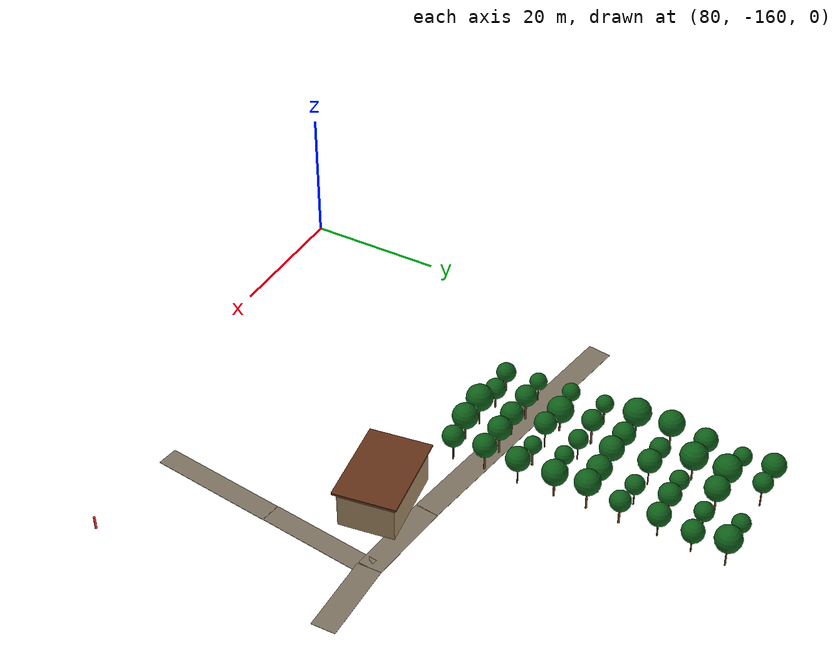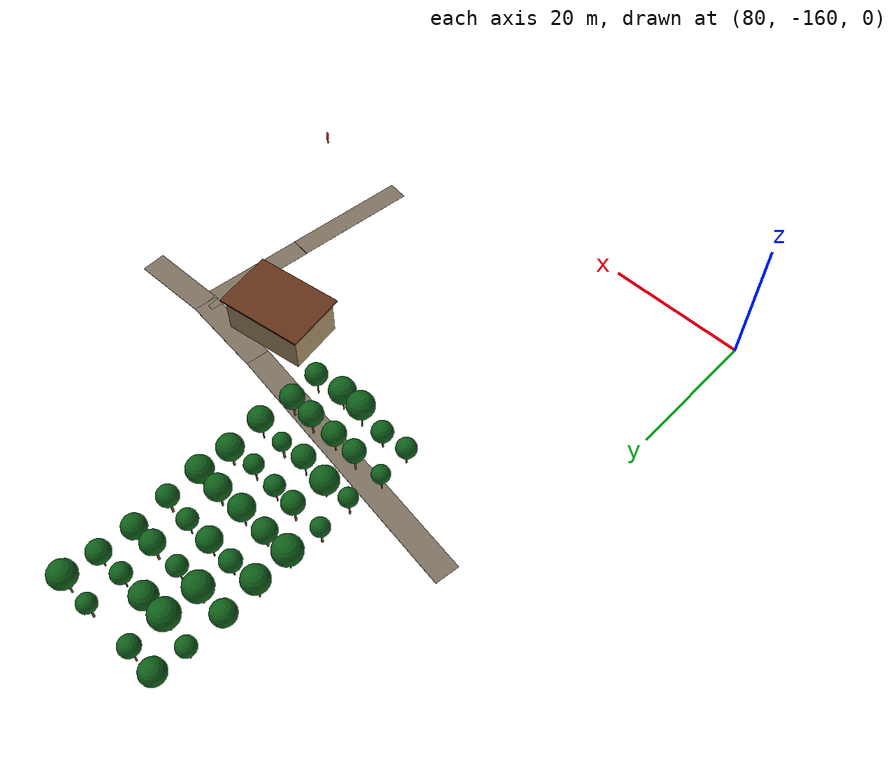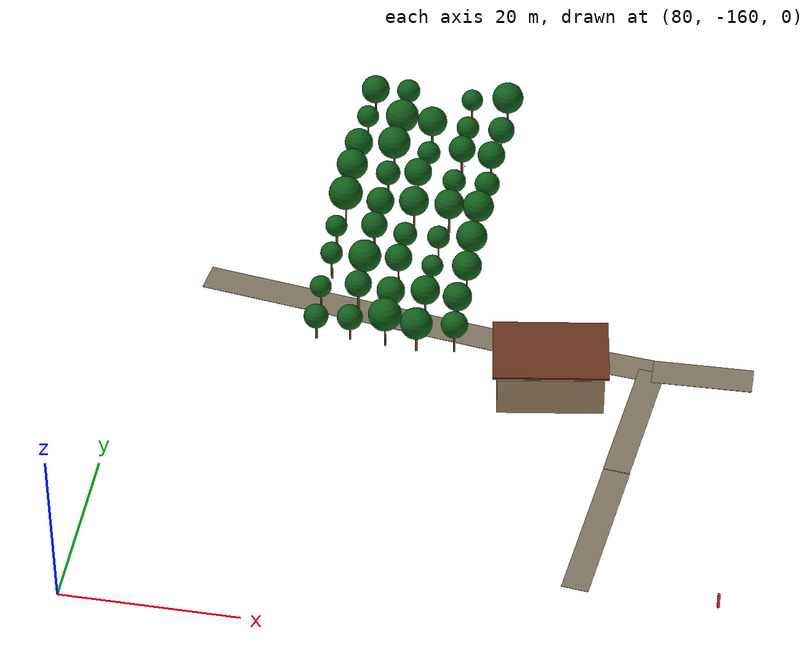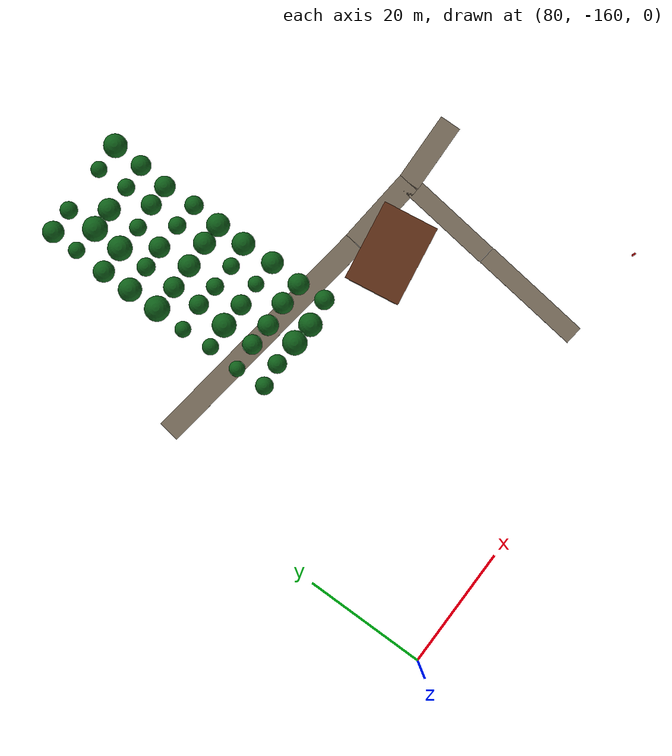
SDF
<sdf version="1.9">
 <world name="cheongsong_orchard">
  <model name="road_6">
   <static>true</static>
   <pose>105.9 -111.3 0.02 0 0 -0.1419</pose>
   <link name="link">
    <collision name="collision">
     <geometry><box><size>40.9 3.5 0.04</size></box></geometry>
     <surface><friction><ode><mu>0.9</mu><mu2>0.9</mu2></ode></friction></surface>
    </collision>
    <visual name="visual">
     <geometry><box><size>40.9 3.5 0.04</size></box></geometry>
     <material><ambient>0.4 0.35 0.28 1</ambient><diffuse>0.5 0.45 0.38 1</diffuse></material>
    </visual>
   </link>
  </model>
  <model name="road_7">
   <static>true</static>
   <pose>132.4 -114.8 0.02 0 0 -0.1008</pose>
   <link name="link">
    <collision name="collision">
     <geometry><box><size>12.5 3.5 0.04</size></box></geometry>
     <surface><friction><ode><mu>0.9</mu><mu2>0.9</mu2></ode></friction></surface>
    </collision>
    <visual name="visual">
     <geometry><box><size>12.5 3.5 0.04</size></box></geometry>
     <material><ambient>0.4 0.35 0.28 1</ambient><diffuse>0.5 0.45 0.38 1</diffuse></material>
    </visual>
   </link>
  </model>
  <model name="road_8">
   <static>true</static>
   <pose>144.3 -115.3 0.02 0 0 0.0247</pose>
   <link name="link">
    <collision name="collision">
     <geometry><box><size>11.4 3.5 0.04</size></box></geometry>
     <surface><friction><ode><mu>0.9</mu><mu2>0.9</mu2></ode></friction></surface>
    </collision>
    <visual name="visual">
     <geometry><box><size>11.4 3.5 0.04</size></box></geometry>
     <material><ambient>0.4 0.35 0.28 1</ambient><diffuse>0.5 0.45 0.38 1</diffuse></material>
    </visual>
   </link>
  </model>
  <model name="road_26">
   <static>true</static>
   <pose>135.6 -140.9 0.02 0 0 1.4537</pose>
   <link name="link">
    <collision name="collision">
     <geometry><box><size>18.3 3.0 0.04</size></box></geometry>
     <surface><friction><ode><mu>0.9</mu><mu2>0.9</mu2></ode></friction></surface>
    </collision>
    <visual name="visual">
     <geometry><box><size>18.3 3.0 0.04</size></box></geometry>
     <material><ambient>0.4 0.35 0.28 1</ambient><diffuse>0.5 0.45 0.38 1</diffuse></material>
    </visual>
   </link>
  </model>
  <model name="road_27">
   <static>true</static>
   <pose>137.6 -123.6 0.02 0 0 1.4529</pose>
   <link name="link">
    <collision name="collision">
     <geometry><box><size>16.4 3.0 0.04</size></box></geometry>
     <surface><friction><ode><mu>0.9</mu><mu2>0.9</mu2></ode></friction></surface>
    </collision>
    <visual name="visual">
     <geometry><box><size>16.4 3.0 0.04</size></box></geometry>
     <material><ambient>0.4 0.35 0.28 1</ambient><diffuse>0.5 0.45 0.38 1</diffuse></material>
    </visual>
   </link>
  </model>
  <model name="apple_tree_51">
   <static>true</static>
   <pose>100.02 -116.29 0 0 0 0</pose>
   <link name="link">
    <collision name="trunk_col">
     <pose>0 0 0.99 0 0 0</pose>
     <geometry><cylinder><radius>0.141</radius><length>1.98</length></cylinder></geometry>
    </collision>
    <visual name="trunk_vis">
     <pose>0 0 0.99 0 0 0</pose>
     <geometry><cylinder><radius>0.141</radius><length>1.98</length></cylinder></geometry>
     <material><ambient>0.35 0.22 0.08 1</ambient><diffuse>0.45 0.30 0.12 1</diffuse></material>
    </visual>
    <collision name="canopy_col">
     <pose>0 0 3.39 0 0 0</pose>
     <geometry><sphere><radius>1.41</radius></sphere></geometry>
    </collision>
    <visual name="canopy_vis">
     <pose>0 0 3.39 0 0 0</pose>
     <geometry><sphere><radius>1.41</radius></sphere></geometry>
     <material><ambient>0.04 0.28 0.06 1</ambient><diffuse>0.06 0.38 0.10 1</diffuse></material>
    </visual>
   </link>
  </model>
  <model name="apple_tree_52">
   <static>true</static>
   <pose>103.86 -115.90 0 0 0 0</pose>
   <link name="link">
    <collision name="trunk_col">
     <pose>0 0 0.99 0 0 0</pose>
     <geometry><cylinder><radius>0.122</radius><length>1.99</length></cylinder></geometry>
    </collision>
    <visual name="trunk_vis">
     <pose>0 0 0.99 0 0 0</pose>
     <geometry><cylinder><radius>0.122</radius><length>1.99</length></cylinder></geometry>
     <material><ambient>0.35 0.22 0.08 1</ambient><diffuse>0.45 0.30 0.12 1</diffuse></material>
    </visual>
    <collision name="canopy_col">
     <pose>0 0 3.46 0 0 0</pose>
     <geometry><sphere><radius>1.48</radius></sphere></geometry>
    </collision>
    <visual name="canopy_vis">
     <pose>0 0 3.46 0 0 0</pose>
     <geometry><sphere><radius>1.48</radius></sphere></geometry>
     <material><ambient>0.04 0.28 0.06 1</ambient><diffuse>0.06 0.38 0.10 1</diffuse></material>
    </visual>
   </link>
  </model>
  <model name="apple_tree_53">
   <static>true</static>
   <pose>107.98 -116.23 0 0 0 0</pose>
   <link name="link">
    <collision name="trunk_col">
     <pose>0 0 1.45 0 0 0</pose>
     <geometry><cylinder><radius>0.088</radius><length>2.91</length></cylinder></geometry>
    </collision>
    <visual name="trunk_vis">
     <pose>0 0 1.45 0 0 0</pose>
     <geometry><cylinder><radius>0.088</radius><length>2.91</length></cylinder></geometry>
     <material><ambient>0.35 0.22 0.08 1</ambient><diffuse>0.45 0.30 0.12 1</diffuse></material>
    </visual>
    <collision name="canopy_col">
     <pose>0 0 4.83 0 0 0</pose>
     <geometry><sphere><radius>1.92</radius></sphere></geometry>
    </collision>
    <visual name="canopy_vis">
     <pose>0 0 4.83 0 0 0</pose>
     <geometry><sphere><radius>1.92</radius></sphere></geometry>
     <material><ambient>0.04 0.28 0.06 1</ambient><diffuse>0.06 0.38 0.10 1</diffuse></material>
    </visual>
   </link>
  </model>
  <model name="apple_tree_54">
   <static>true</static>
   <pose>111.62 -116.46 0 0 0 0</pose>
   <link name="link">
    <collision name="trunk_col">
     <pose>0 0 1.19 0 0 0</pose>
     <geometry><cylinder><radius>0.116</radius><length>2.38</length></cylinder></geometry>
    </collision>
    <visual name="trunk_vis">
     <pose>0 0 1.19 0 0 0</pose>
     <geometry><cylinder><radius>0.116</radius><length>2.38</length></cylinder></geometry>
     <material><ambient>0.35 0.22 0.08 1</ambient><diffuse>0.45 0.30 0.12 1</diffuse></material>
    </visual>
    <collision name="canopy_col">
     <pose>0 0 4.22 0 0 0</pose>
     <geometry><sphere><radius>1.85</radius></sphere></geometry>
    </collision>
    <visual name="canopy_vis">
     <pose>0 0 4.22 0 0 0</pose>
     <geometry><sphere><radius>1.85</radius></sphere></geometry>
     <material><ambient>0.04 0.28 0.06 1</ambient><diffuse>0.06 0.38 0.10 1</diffuse></material>
    </visual>
   </link>
  </model>
  <model name="apple_tree_55">
   <static>true</static>
   <pose>115.92 -115.93 0 0 0 0</pose>
   <link name="link">
    <collision name="trunk_col">
     <pose>0 0 1.33 0 0 0</pose>
     <geometry><cylinder><radius>0.094</radius><length>2.67</length></cylinder></geometry>
    </collision>
    <visual name="trunk_vis">
     <pose>0 0 1.33 0 0 0</pose>
     <geometry><cylinder><radius>0.094</radius><length>2.67</length></cylinder></geometry>
     <material><ambient>0.35 0.22 0.08 1</ambient><diffuse>0.45 0.30 0.12 1</diffuse></material>
    </visual>
    <collision name="canopy_col">
     <pose>0 0 4.21 0 0 0</pose>
     <geometry><sphere><radius>1.55</radius></sphere></geometry>
    </collision>
    <visual name="canopy_vis">
     <pose>0 0 4.21 0 0 0</pose>
     <geometry><sphere><radius>1.55</radius></sphere></geometry>
     <material><ambient>0.04 0.28 0.06 1</ambient><diffuse>0.06 0.38 0.10 1</diffuse></material>
    </visual>
   </link>
  </model>
  <model name="apple_tree_105">
   <static>true</static>
   <pose>99.65 -111.40 0 0 0 0</pose>
   <link name="link">
    <collision name="trunk_col">
     <pose>0 0 1.10 0 0 0</pose>
     <geometry><cylinder><radius>0.090</radius><length>2.21</length></cylinder></geometry>
    </collision>
    <visual name="trunk_vis">
     <pose>0 0 1.10 0 0 0</pose>
     <geometry><cylinder><radius>0.090</radius><length>2.21</length></cylinder></geometry>
     <material><ambient>0.35 0.22 0.08 1</ambient><diffuse>0.45 0.30 0.12 1</diffuse></material>
    </visual>
    <collision name="canopy_col">
     <pose>0 0 3.46 0 0 0</pose>
     <geometry><sphere><radius>1.25</radius></sphere></geometry>
    </collision>
    <visual name="canopy_vis">
     <pose>0 0 3.46 0 0 0</pose>
     <geometry><sphere><radius>1.25</radius></sphere></geometry>
     <material><ambient>0.04 0.28 0.06 1</ambient><diffuse>0.06 0.38 0.10 1</diffuse></material>
    </visual>
   </link>
  </model>
  <model name="apple_tree_106">
   <static>true</static>
   <pose>103.99 -111.13 0 0 0 0</pose>
   <link name="link">
    <collision name="trunk_col">
     <pose>0 0 1.38 0 0 0</pose>
     <geometry><cylinder><radius>0.144</radius><length>2.75</length></cylinder></geometry>
    </collision>
    <visual name="trunk_vis">
     <pose>0 0 1.38 0 0 0</pose>
     <geometry><cylinder><radius>0.144</radius><length>2.75</length></cylinder></geometry>
     <material><ambient>0.35 0.22 0.08 1</ambient><diffuse>0.45 0.30 0.12 1</diffuse></material>
    </visual>
    <collision name="canopy_col">
     <pose>0 0 4.30 0 0 0</pose>
     <geometry><sphere><radius>1.55</radius></sphere></geometry>
    </collision>
    <visual name="canopy_vis">
     <pose>0 0 4.30 0 0 0</pose>
     <geometry><sphere><radius>1.55</radius></sphere></geometry>
     <material><ambient>0.04 0.28 0.06 1</ambient><diffuse>0.06 0.38 0.10 1</diffuse></material>
    </visual>
   </link>
  </model>
  <model name="apple_tree_107">
   <static>true</static>
   <pose>107.79 -111.31 0 0 0 0</pose>
   <link name="link">
    <collision name="trunk_col">
     <pose>0 0 1.17 0 0 0</pose>
     <geometry><cylinder><radius>0.099</radius><length>2.34</length></cylinder></geometry>
    </collision>
    <visual name="trunk_vis">
     <pose>0 0 1.17 0 0 0</pose>
     <geometry><cylinder><radius>0.099</radius><length>2.34</length></cylinder></geometry>
     <material><ambient>0.35 0.22 0.08 1</ambient><diffuse>0.45 0.30 0.12 1</diffuse></material>
    </visual>
    <collision name="canopy_col">
     <pose>0 0 3.97 0 0 0</pose>
     <geometry><sphere><radius>1.63</radius></sphere></geometry>
    </collision>
    <visual name="canopy_vis">
     <pose>0 0 3.97 0 0 0</pose>
     <geometry><sphere><radius>1.63</radius></sphere></geometry>
     <material><ambient>0.04 0.28 0.06 1</ambient><diffuse>0.06 0.38 0.10 1</diffuse></material>
    </visual>
   </link>
  </model>
  <model name="apple_tree_108">
   <static>true</static>
   <pose>111.77 -111.13 0 0 0 0</pose>
   <link name="link">
    <collision name="trunk_col">
     <pose>0 0 1.41 0 0 0</pose>
     <geometry><cylinder><radius>0.131</radius><length>2.82</length></cylinder></geometry>
    </collision>
    <visual name="trunk_vis">
     <pose>0 0 1.41 0 0 0</pose>
     <geometry><cylinder><radius>0.131</radius><length>2.82</length></cylinder></geometry>
     <material><ambient>0.35 0.22 0.08 1</ambient><diffuse>0.45 0.30 0.12 1</diffuse></material>
    </visual>
    <collision name="canopy_col">
     <pose>0 0 4.50 0 0 0</pose>
     <geometry><sphere><radius>1.68</radius></sphere></geometry>
    </collision>
    <visual name="canopy_vis">
     <pose>0 0 4.50 0 0 0</pose>
     <geometry><sphere><radius>1.68</radius></sphere></geometry>
     <material><ambient>0.04 0.28 0.06 1</ambient><diffuse>0.06 0.38 0.10 1</diffuse></material>
    </visual>
   </link>
  </model>
  <model name="apple_tree_109">
   <static>true</static>
   <pose>115.53 -111.35 0 0 0 0</pose>
   <link name="link">
    <collision name="trunk_col">
     <pose>0 0 1.30 0 0 0</pose>
     <geometry><cylinder><radius>0.140</radius><length>2.61</length></cylinder></geometry>
    </collision>
    <visual name="trunk_vis">
     <pose>0 0 1.30 0 0 0</pose>
     <geometry><cylinder><radius>0.140</radius><length>2.61</length></cylinder></geometry>
     <material><ambient>0.35 0.22 0.08 1</ambient><diffuse>0.45 0.30 0.12 1</diffuse></material>
    </visual>
    <collision name="canopy_col">
     <pose>0 0 4.28 0 0 0</pose>
     <geometry><sphere><radius>1.67</radius></sphere></geometry>
    </collision>
    <visual name="canopy_vis">
     <pose>0 0 4.28 0 0 0</pose>
     <geometry><sphere><radius>1.67</radius></sphere></geometry>
     <material><ambient>0.04 0.28 0.06 1</ambient><diffuse>0.06 0.38 0.10 1</diffuse></material>
    </visual>
   </link>
  </model>
  <model name="apple_tree_157">
   <static>true</static>
   <pose>99.96 -106.20 0 0 0 0</pose>
   <link name="link">
    <collision name="trunk_col">
     <pose>0 0 1.35 0 0 0</pose>
     <geometry><cylinder><radius>0.116</radius><length>2.71</length></cylinder></geometry>
    </collision>
    <visual name="trunk_vis">
     <pose>0 0 1.35 0 0 0</pose>
     <geometry><cylinder><radius>0.116</radius><length>2.71</length></cylinder></geometry>
     <material><ambient>0.35 0.22 0.08 1</ambient><diffuse>0.45 0.30 0.12 1</diffuse></material>
    </visual>
    <collision name="canopy_col">
     <pose>0 0 4.00 0 0 0</pose>
     <geometry><sphere><radius>1.29</radius></sphere></geometry>
    </collision>
    <visual name="canopy_vis">
     <pose>0 0 4.00 0 0 0</pose>
     <geometry><sphere><radius>1.29</radius></sphere></geometry>
     <material><ambient>0.04 0.28 0.06 1</ambient><diffuse>0.06 0.38 0.10 1</diffuse></material>
    </visual>
   </link>
  </model>
  <model name="apple_tree_158">
   <static>true</static>
   <pose>103.81 -105.92 0 0 0 0</pose>
   <link name="link">
    <collision name="trunk_col">
     <pose>0 0 1.00 0 0 0</pose>
     <geometry><cylinder><radius>0.135</radius><length>1.99</length></cylinder></geometry>
    </collision>
    <visual name="trunk_vis">
     <pose>0 0 1.00 0 0 0</pose>
     <geometry><cylinder><radius>0.135</radius><length>1.99</length></cylinder></geometry>
     <material><ambient>0.35 0.22 0.08 1</ambient><diffuse>0.45 0.30 0.12 1</diffuse></material>
    </visual>
    <collision name="canopy_col">
     <pose>0 0 3.89 0 0 0</pose>
     <geometry><sphere><radius>1.89</radius></sphere></geometry>
    </collision>
    <visual name="canopy_vis">
     <pose>0 0 3.89 0 0 0</pose>
     <geometry><sphere><radius>1.89</radius></sphere></geometry>
     <material><ambient>0.04 0.28 0.06 1</ambient><diffuse>0.06 0.38 0.10 1</diffuse></material>
    </visual>
   </link>
  </model>
  <model name="apple_tree_159">
   <static>true</static>
   <pose>107.82 -106.21 0 0 0 0</pose>
   <link name="link">
    <collision name="trunk_col">
     <pose>0 0 1.44 0 0 0</pose>
     <geometry><cylinder><radius>0.084</radius><length>2.89</length></cylinder></geometry>
    </collision>
    <visual name="trunk_vis">
     <pose>0 0 1.44 0 0 0</pose>
     <geometry><cylinder><radius>0.084</radius><length>2.89</length></cylinder></geometry>
     <material><ambient>0.35 0.22 0.08 1</ambient><diffuse>0.45 0.30 0.12 1</diffuse></material>
    </visual>
    <collision name="canopy_col">
     <pose>0 0 4.47 0 0 0</pose>
     <geometry><sphere><radius>1.58</radius></sphere></geometry>
    </collision>
    <visual name="canopy_vis">
     <pose>0 0 4.47 0 0 0</pose>
     <geometry><sphere><radius>1.58</radius></sphere></geometry>
     <material><ambient>0.04 0.28 0.06 1</ambient><diffuse>0.06 0.38 0.10 1</diffuse></material>
    </visual>
   </link>
  </model>
  <model name="apple_tree_160">
   <static>true</static>
   <pose>111.75 -106.08 0 0 0 0</pose>
   <link name="link">
    <collision name="trunk_col">
     <pose>0 0 1.21 0 0 0</pose>
     <geometry><cylinder><radius>0.144</radius><length>2.43</length></cylinder></geometry>
    </collision>
    <visual name="trunk_vis">
     <pose>0 0 1.21 0 0 0</pose>
     <geometry><cylinder><radius>0.144</radius><length>2.43</length></cylinder></geometry>
     <material><ambient>0.35 0.22 0.08 1</ambient><diffuse>0.45 0.30 0.12 1</diffuse></material>
    </visual>
    <collision name="canopy_col">
     <pose>0 0 3.69 0 0 0</pose>
     <geometry><sphere><radius>1.26</radius></sphere></geometry>
    </collision>
    <visual name="canopy_vis">
     <pose>0 0 3.69 0 0 0</pose>
     <geometry><sphere><radius>1.26</radius></sphere></geometry>
     <material><ambient>0.04 0.28 0.06 1</ambient><diffuse>0.06 0.38 0.10 1</diffuse></material>
    </visual>
   </link>
  </model>
  <model name="apple_tree_161">
   <static>true</static>
   <pose>115.81 -106.23 0 0 0 0</pose>
   <link name="link">
    <collision name="trunk_col">
     <pose>0 0 1.36 0 0 0</pose>
     <geometry><cylinder><radius>0.088</radius><length>2.72</length></cylinder></geometry>
    </collision>
    <visual name="trunk_vis">
     <pose>0 0 1.36 0 0 0</pose>
     <geometry><cylinder><radius>0.088</radius><length>2.72</length></cylinder></geometry>
     <material><ambient>0.35 0.22 0.08 1</ambient><diffuse>0.45 0.30 0.12 1</diffuse></material>
    </visual>
    <collision name="canopy_col">
     <pose>0 0 4.45 0 0 0</pose>
     <geometry><sphere><radius>1.72</radius></sphere></geometry>
    </collision>
    <visual name="canopy_vis">
     <pose>0 0 4.45 0 0 0</pose>
     <geometry><sphere><radius>1.72</radius></sphere></geometry>
     <material><ambient>0.04 0.28 0.06 1</ambient><diffuse>0.06 0.38 0.10 1</diffuse></material>
    </visual>
   </link>
  </model>
  <model name="apple_tree_205">
   <static>true</static>
   <pose>99.61 -101.22 0 0 0 0</pose>
   <link name="link">
    <collision name="trunk_col">
     <pose>0 0 1.23 0 0 0</pose>
     <geometry><cylinder><radius>0.138</radius><length>2.45</length></cylinder></geometry>
    </collision>
    <visual name="trunk_vis">
     <pose>0 0 1.23 0 0 0</pose>
     <geometry><cylinder><radius>0.138</radius><length>2.45</length></cylinder></geometry>
     <material><ambient>0.35 0.22 0.08 1</ambient><diffuse>0.45 0.30 0.12 1</diffuse></material>
    </visual>
    <collision name="canopy_col">
     <pose>0 0 3.72 0 0 0</pose>
     <geometry><sphere><radius>1.27</radius></sphere></geometry>
    </collision>
    <visual name="canopy_vis">
     <pose>0 0 3.72 0 0 0</pose>
     <geometry><sphere><radius>1.27</radius></sphere></geometry>
     <material><ambient>0.04 0.28 0.06 1</ambient><diffuse>0.06 0.38 0.10 1</diffuse></material>
    </visual>
   </link>
  </model>
  <model name="apple_tree_206">
   <static>true</static>
   <pose>104.06 -101.00 0 0 0 0</pose>
   <link name="link">
    <collision name="trunk_col">
     <pose>0 0 1.41 0 0 0</pose>
     <geometry><cylinder><radius>0.145</radius><length>2.81</length></cylinder></geometry>
    </collision>
    <visual name="trunk_vis">
     <pose>0 0 1.41 0 0 0</pose>
     <geometry><cylinder><radius>0.145</radius><length>2.81</length></cylinder></geometry>
     <material><ambient>0.35 0.22 0.08 1</ambient><diffuse>0.45 0.30 0.12 1</diffuse></material>
    </visual>
    <collision name="canopy_col">
     <pose>0 0 4.34 0 0 0</pose>
     <geometry><sphere><radius>1.53</radius></sphere></geometry>
    </collision>
    <visual name="canopy_vis">
     <pose>0 0 4.34 0 0 0</pose>
     <geometry><sphere><radius>1.53</radius></sphere></geometry>
     <material><ambient>0.04 0.28 0.06 1</ambient><diffuse>0.06 0.38 0.10 1</diffuse></material>
    </visual>
   </link>
  </model>
  <model name="apple_tree_207">
   <static>true</static>
   <pose>107.75 -101.27 0 0 0 0</pose>
   <link name="link">
    <collision name="trunk_col">
     <pose>0 0 1.16 0 0 0</pose>
     <geometry><cylinder><radius>0.086</radius><length>2.33</length></cylinder></geometry>
    </collision>
    <visual name="trunk_vis">
     <pose>0 0 1.16 0 0 0</pose>
     <geometry><cylinder><radius>0.086</radius><length>2.33</length></cylinder></geometry>
     <material><ambient>0.35 0.22 0.08 1</ambient><diffuse>0.45 0.30 0.12 1</diffuse></material>
    </visual>
    <collision name="canopy_col">
     <pose>0 0 3.71 0 0 0</pose>
     <geometry><sphere><radius>1.38</radius></sphere></geometry>
    </collision>
    <visual name="canopy_vis">
     <pose>0 0 3.71 0 0 0</pose>
     <geometry><sphere><radius>1.38</radius></sphere></geometry>
     <material><ambient>0.04 0.28 0.06 1</ambient><diffuse>0.06 0.38 0.10 1</diffuse></material>
    </visual>
   </link>
  </model>
  <model name="apple_tree_208">
   <static>true</static>
   <pose>111.70 -101.43 0 0 0 0</pose>
   <link name="link">
    <collision name="trunk_col">
     <pose>0 0 1.32 0 0 0</pose>
     <geometry><cylinder><radius>0.103</radius><length>2.65</length></cylinder></geometry>
    </collision>
    <visual name="trunk_vis">
     <pose>0 0 1.32 0 0 0</pose>
     <geometry><cylinder><radius>0.103</radius><length>2.65</length></cylinder></geometry>
     <material><ambient>0.35 0.22 0.08 1</ambient><diffuse>0.45 0.30 0.12 1</diffuse></material>
    </visual>
    <collision name="canopy_col">
     <pose>0 0 3.96 0 0 0</pose>
     <geometry><sphere><radius>1.32</radius></sphere></geometry>
    </collision>
    <visual name="canopy_vis">
     <pose>0 0 3.96 0 0 0</pose>
     <geometry><sphere><radius>1.32</radius></sphere></geometry>
     <material><ambient>0.04 0.28 0.06 1</ambient><diffuse>0.06 0.38 0.10 1</diffuse></material>
    </visual>
   </link>
  </model>
  <model name="apple_tree_209">
   <static>true</static>
   <pose>115.53 -100.94 0 0 0 0</pose>
   <link name="link">
    <collision name="trunk_col">
     <pose>0 0 1.21 0 0 0</pose>
     <geometry><cylinder><radius>0.138</radius><length>2.41</length></cylinder></geometry>
    </collision>
    <visual name="trunk_vis">
     <pose>0 0 1.21 0 0 0</pose>
     <geometry><cylinder><radius>0.138</radius><length>2.41</length></cylinder></geometry>
     <material><ambient>0.35 0.22 0.08 1</ambient><diffuse>0.45 0.30 0.12 1</diffuse></material>
    </visual>
    <collision name="canopy_col">
     <pose>0 0 4.22 0 0 0</pose>
     <geometry><sphere><radius>1.81</radius></sphere></geometry>
    </collision>
    <visual name="canopy_vis">
     <pose>0 0 4.22 0 0 0</pose>
     <geometry><sphere><radius>1.81</radius></sphere></geometry>
     <material><ambient>0.04 0.28 0.06 1</ambient><diffuse>0.06 0.38 0.10 1</diffuse></material>
    </visual>
   </link>
  </model>
  <model name="apple_tree_256">
   <static>true</static>
   <pose>99.82 -96.29 0 0 0 0</pose>
   <link name="link">
    <collision name="trunk_col">
     <pose>0 0 1.27 0 0 0</pose>
     <geometry><cylinder><radius>0.091</radius><length>2.55</length></cylinder></geometry>
    </collision>
    <visual name="trunk_vis">
     <pose>0 0 1.27 0 0 0</pose>
     <geometry><cylinder><radius>0.091</radius><length>2.55</length></cylinder></geometry>
     <material><ambient>0.35 0.22 0.08 1</ambient><diffuse>0.45 0.30 0.12 1</diffuse></material>
    </visual>
    <collision name="canopy_col">
     <pose>0 0 4.54 0 0 0</pose>
     <geometry><sphere><radius>1.99</radius></sphere></geometry>
    </collision>
    <visual name="canopy_vis">
     <pose>0 0 4.54 0 0 0</pose>
     <geometry><sphere><radius>1.99</radius></sphere></geometry>
     <material><ambient>0.04 0.28 0.06 1</ambient><diffuse>0.06 0.38 0.10 1</diffuse></material>
    </visual>
   </link>
  </model>
  <model name="apple_tree_257">
   <static>true</static>
   <pose>103.95 -96.31 0 0 0 0</pose>
   <link name="link">
    <collision name="trunk_col">
     <pose>0 0 1.14 0 0 0</pose>
     <geometry><cylinder><radius>0.138</radius><length>2.28</length></cylinder></geometry>
    </collision>
    <visual name="trunk_vis">
     <pose>0 0 1.14 0 0 0</pose>
     <geometry><cylinder><radius>0.138</radius><length>2.28</length></cylinder></geometry>
     <material><ambient>0.35 0.22 0.08 1</ambient><diffuse>0.45 0.30 0.12 1</diffuse></material>
    </visual>
    <collision name="canopy_col">
     <pose>0 0 3.90 0 0 0</pose>
     <geometry><sphere><radius>1.63</radius></sphere></geometry>
    </collision>
    <visual name="canopy_vis">
     <pose>0 0 3.90 0 0 0</pose>
     <geometry><sphere><radius>1.63</radius></sphere></geometry>
     <material><ambient>0.04 0.28 0.06 1</ambient><diffuse>0.06 0.38 0.10 1</diffuse></material>
    </visual>
   </link>
  </model>
  <model name="apple_tree_258">
   <static>true</static>
   <pose>107.94 -96.31 0 0 0 0</pose>
   <link name="link">
    <collision name="trunk_col">
     <pose>0 0 1.37 0 0 0</pose>
     <geometry><cylinder><radius>0.106</radius><length>2.75</length></cylinder></geometry>
    </collision>
    <visual name="trunk_vis">
     <pose>0 0 1.37 0 0 0</pose>
     <geometry><cylinder><radius>0.106</radius><length>2.75</length></cylinder></geometry>
     <material><ambient>0.35 0.22 0.08 1</ambient><diffuse>0.45 0.30 0.12 1</diffuse></material>
    </visual>
    <collision name="canopy_col">
     <pose>0 0 4.48 0 0 0</pose>
     <geometry><sphere><radius>1.74</radius></sphere></geometry>
    </collision>
    <visual name="canopy_vis">
     <pose>0 0 4.48 0 0 0</pose>
     <geometry><sphere><radius>1.74</radius></sphere></geometry>
     <material><ambient>0.04 0.28 0.06 1</ambient><diffuse>0.06 0.38 0.10 1</diffuse></material>
    </visual>
   </link>
  </model>
  <model name="apple_tree_259">
   <static>true</static>
   <pose>112.10 -96.14 0 0 0 0</pose>
   <link name="link">
    <collision name="trunk_col">
     <pose>0 0 1.36 0 0 0</pose>
     <geometry><cylinder><radius>0.131</radius><length>2.73</length></cylinder></geometry>
    </collision>
    <visual name="trunk_vis">
     <pose>0 0 1.36 0 0 0</pose>
     <geometry><cylinder><radius>0.131</radius><length>2.73</length></cylinder></geometry>
     <material><ambient>0.35 0.22 0.08 1</ambient><diffuse>0.45 0.30 0.12 1</diffuse></material>
    </visual>
    <collision name="canopy_col">
     <pose>0 0 4.48 0 0 0</pose>
     <geometry><sphere><radius>1.75</radius></sphere></geometry>
    </collision>
    <visual name="canopy_vis">
     <pose>0 0 4.48 0 0 0</pose>
     <geometry><sphere><radius>1.75</radius></sphere></geometry>
     <material><ambient>0.04 0.28 0.06 1</ambient><diffuse>0.06 0.38 0.10 1</diffuse></material>
    </visual>
   </link>
  </model>
  <model name="apple_tree_260">
   <static>true</static>
   <pose>115.53 -96.20 0 0 0 0</pose>
   <link name="link">
    <collision name="trunk_col">
     <pose>0 0 1.45 0 0 0</pose>
     <geometry><cylinder><radius>0.135</radius><length>2.89</length></cylinder></geometry>
    </collision>
    <visual name="trunk_vis">
     <pose>0 0 1.45 0 0 0</pose>
     <geometry><cylinder><radius>0.135</radius><length>2.89</length></cylinder></geometry>
     <material><ambient>0.35 0.22 0.08 1</ambient><diffuse>0.45 0.30 0.12 1</diffuse></material>
    </visual>
    <collision name="canopy_col">
     <pose>0 0 4.71 0 0 0</pose>
     <geometry><sphere><radius>1.82</radius></sphere></geometry>
    </collision>
    <visual name="canopy_vis">
     <pose>0 0 4.71 0 0 0</pose>
     <geometry><sphere><radius>1.82</radius></sphere></geometry>
     <material><ambient>0.04 0.28 0.06 1</ambient><diffuse>0.06 0.38 0.10 1</diffuse></material>
    </visual>
   </link>
  </model>
  <model name="apple_tree_312">
   <static>true</static>
   <pose>99.70 -91.27 0 0 0 0</pose>
   <link name="link">
    <collision name="trunk_col">
     <pose>0 0 1.41 0 0 0</pose>
     <geometry><cylinder><radius>0.113</radius><length>2.81</length></cylinder></geometry>
    </collision>
    <visual name="trunk_vis">
     <pose>0 0 1.41 0 0 0</pose>
     <geometry><cylinder><radius>0.113</radius><length>2.81</length></cylinder></geometry>
     <material><ambient>0.35 0.22 0.08 1</ambient><diffuse>0.45 0.30 0.12 1</diffuse></material>
    </visual>
    <collision name="canopy_col">
     <pose>0 0 4.65 0 0 0</pose>
     <geometry><sphere><radius>1.84</radius></sphere></geometry>
    </collision>
    <visual name="canopy_vis">
     <pose>0 0 4.65 0 0 0</pose>
     <geometry><sphere><radius>1.84</radius></sphere></geometry>
     <material><ambient>0.04 0.28 0.06 1</ambient><diffuse>0.06 0.38 0.10 1</diffuse></material>
    </visual>
   </link>
  </model>
  <model name="apple_tree_313">
   <static>true</static>
   <pose>103.94 -91.03 0 0 0 0</pose>
   <link name="link">
    <collision name="trunk_col">
     <pose>0 0 1.13 0 0 0</pose>
     <geometry><cylinder><radius>0.094</radius><length>2.26</length></cylinder></geometry>
    </collision>
    <visual name="trunk_vis">
     <pose>0 0 1.13 0 0 0</pose>
     <geometry><cylinder><radius>0.094</radius><length>2.26</length></cylinder></geometry>
     <material><ambient>0.35 0.22 0.08 1</ambient><diffuse>0.45 0.30 0.12 1</diffuse></material>
    </visual>
    <collision name="canopy_col">
     <pose>0 0 3.71 0 0 0</pose>
     <geometry><sphere><radius>1.45</radius></sphere></geometry>
    </collision>
    <visual name="canopy_vis">
     <pose>0 0 3.71 0 0 0</pose>
     <geometry><sphere><radius>1.45</radius></sphere></geometry>
     <material><ambient>0.04 0.28 0.06 1</ambient><diffuse>0.06 0.38 0.10 1</diffuse></material>
    </visual>
   </link>
  </model>
  <model name="apple_tree_314">
   <static>true</static>
   <pose>107.54 -90.97 0 0 0 0</pose>
   <link name="link">
    <collision name="trunk_col">
     <pose>0 0 1.34 0 0 0</pose>
     <geometry><cylinder><radius>0.081</radius><length>2.67</length></cylinder></geometry>
    </collision>
    <visual name="trunk_vis">
     <pose>0 0 1.34 0 0 0</pose>
     <geometry><cylinder><radius>0.081</radius><length>2.67</length></cylinder></geometry>
     <material><ambient>0.35 0.22 0.08 1</ambient><diffuse>0.45 0.30 0.12 1</diffuse></material>
    </visual>
    <collision name="canopy_col">
     <pose>0 0 4.32 0 0 0</pose>
     <geometry><sphere><radius>1.64</radius></sphere></geometry>
    </collision>
    <visual name="canopy_vis">
     <pose>0 0 4.32 0 0 0</pose>
     <geometry><sphere><radius>1.64</radius></sphere></geometry>
     <material><ambient>0.04 0.28 0.06 1</ambient><diffuse>0.06 0.38 0.10 1</diffuse></material>
    </visual>
   </link>
  </model>
  <model name="apple_tree_315">
   <static>true</static>
   <pose>111.86 -91.06 0 0 0 0</pose>
   <link name="link">
    <collision name="trunk_col">
     <pose>0 0 1.12 0 0 0</pose>
     <geometry><cylinder><radius>0.094</radius><length>2.24</length></cylinder></geometry>
    </collision>
    <visual name="trunk_vis">
     <pose>0 0 1.12 0 0 0</pose>
     <geometry><cylinder><radius>0.094</radius><length>2.24</length></cylinder></geometry>
     <material><ambient>0.35 0.22 0.08 1</ambient><diffuse>0.45 0.30 0.12 1</diffuse></material>
    </visual>
    <collision name="canopy_col">
     <pose>0 0 3.62 0 0 0</pose>
     <geometry><sphere><radius>1.38</radius></sphere></geometry>
    </collision>
    <visual name="canopy_vis">
     <pose>0 0 3.62 0 0 0</pose>
     <geometry><sphere><radius>1.38</radius></sphere></geometry>
     <material><ambient>0.04 0.28 0.06 1</ambient><diffuse>0.06 0.38 0.10 1</diffuse></material>
    </visual>
   </link>
  </model>
  <model name="apple_tree_316">
   <static>true</static>
   <pose>115.85 -91.34 0 0 0 0</pose>
   <link name="link">
    <collision name="trunk_col">
     <pose>0 0 1.24 0 0 0</pose>
     <geometry><cylinder><radius>0.146</radius><length>2.49</length></cylinder></geometry>
    </collision>
    <visual name="trunk_vis">
     <pose>0 0 1.24 0 0 0</pose>
     <geometry><cylinder><radius>0.146</radius><length>2.49</length></cylinder></geometry>
     <material><ambient>0.35 0.22 0.08 1</ambient><diffuse>0.45 0.30 0.12 1</diffuse></material>
    </visual>
    <collision name="canopy_col">
     <pose>0 0 3.96 0 0 0</pose>
     <geometry><sphere><radius>1.47</radius></sphere></geometry>
    </collision>
    <visual name="canopy_vis">
     <pose>0 0 3.96 0 0 0</pose>
     <geometry><sphere><radius>1.47</radius></sphere></geometry>
     <material><ambient>0.04 0.28 0.06 1</ambient><diffuse>0.06 0.38 0.10 1</diffuse></material>
    </visual>
   </link>
  </model>
  <model name="apple_tree_367">
   <static>true</static>
   <pose>99.58 -86.27 0 0 0 0</pose>
   <link name="link">
    <collision name="trunk_col">
     <pose>0 0 1.04 0 0 0</pose>
     <geometry><cylinder><radius>0.107</radius><length>2.09</length></cylinder></geometry>
    </collision>
    <visual name="trunk_vis">
     <pose>0 0 1.04 0 0 0</pose>
     <geometry><cylinder><radius>0.107</radius><length>2.09</length></cylinder></geometry>
     <material><ambient>0.35 0.22 0.08 1</ambient><diffuse>0.45 0.30 0.12 1</diffuse></material>
    </visual>
    <collision name="canopy_col">
     <pose>0 0 3.76 0 0 0</pose>
     <geometry><sphere><radius>1.68</radius></sphere></geometry>
    </collision>
    <visual name="canopy_vis">
     <pose>0 0 3.76 0 0 0</pose>
     <geometry><sphere><radius>1.68</radius></sphere></geometry>
     <material><ambient>0.04 0.28 0.06 1</ambient><diffuse>0.06 0.38 0.10 1</diffuse></material>
    </visual>
   </link>
  </model>
  <model name="apple_tree_368">
   <static>true</static>
   <pose>103.86 -86.24 0 0 0 0</pose>
   <link name="link">
    <collision name="trunk_col">
     <pose>0 0 1.21 0 0 0</pose>
     <geometry><cylinder><radius>0.118</radius><length>2.42</length></cylinder></geometry>
    </collision>
    <visual name="trunk_vis">
     <pose>0 0 1.21 0 0 0</pose>
     <geometry><cylinder><radius>0.118</radius><length>2.42</length></cylinder></geometry>
     <material><ambient>0.35 0.22 0.08 1</ambient><diffuse>0.45 0.30 0.12 1</diffuse></material>
    </visual>
    <collision name="canopy_col">
     <pose>0 0 4.36 0 0 0</pose>
     <geometry><sphere><radius>1.94</radius></sphere></geometry>
    </collision>
    <visual name="canopy_vis">
     <pose>0 0 4.36 0 0 0</pose>
     <geometry><sphere><radius>1.94</radius></sphere></geometry>
     <material><ambient>0.04 0.28 0.06 1</ambient><diffuse>0.06 0.38 0.10 1</diffuse></material>
    </visual>
   </link>
  </model>
  <model name="apple_tree_369">
   <static>true</static>
   <pose>108.07 -86.39 0 0 0 0</pose>
   <link name="link">
    <collision name="trunk_col">
     <pose>0 0 1.06 0 0 0</pose>
     <geometry><cylinder><radius>0.100</radius><length>2.11</length></cylinder></geometry>
    </collision>
    <visual name="trunk_vis">
     <pose>0 0 1.06 0 0 0</pose>
     <geometry><cylinder><radius>0.100</radius><length>2.11</length></cylinder></geometry>
     <material><ambient>0.35 0.22 0.08 1</ambient><diffuse>0.45 0.30 0.12 1</diffuse></material>
    </visual>
    <collision name="canopy_col">
     <pose>0 0 3.46 0 0 0</pose>
     <geometry><sphere><radius>1.35</radius></sphere></geometry>
    </collision>
    <visual name="canopy_vis">
     <pose>0 0 3.46 0 0 0</pose>
     <geometry><sphere><radius>1.35</radius></sphere></geometry>
     <material><ambient>0.04 0.28 0.06 1</ambient><diffuse>0.06 0.38 0.10 1</diffuse></material>
    </visual>
   </link>
  </model>
  <model name="apple_tree_370">
   <static>true</static>
   <pose>112.02 -86.12 0 0 0 0</pose>
   <link name="link">
    <collision name="trunk_col">
     <pose>0 0 1.40 0 0 0</pose>
     <geometry><cylinder><radius>0.147</radius><length>2.79</length></cylinder></geometry>
    </collision>
    <visual name="trunk_vis">
     <pose>0 0 1.40 0 0 0</pose>
     <geometry><cylinder><radius>0.147</radius><length>2.79</length></cylinder></geometry>
     <material><ambient>0.35 0.22 0.08 1</ambient><diffuse>0.45 0.30 0.12 1</diffuse></material>
    </visual>
    <collision name="canopy_col">
     <pose>0 0 4.38 0 0 0</pose>
     <geometry><sphere><radius>1.59</radius></sphere></geometry>
    </collision>
    <visual name="canopy_vis">
     <pose>0 0 4.38 0 0 0</pose>
     <geometry><sphere><radius>1.59</radius></sphere></geometry>
     <material><ambient>0.04 0.28 0.06 1</ambient><diffuse>0.06 0.38 0.10 1</diffuse></material>
    </visual>
   </link>
  </model>
  <model name="apple_tree_371">
   <static>true</static>
   <pose>115.53 -86.03 0 0 0 0</pose>
   <link name="link">
    <collision name="trunk_col">
     <pose>0 0 1.12 0 0 0</pose>
     <geometry><cylinder><radius>0.099</radius><length>2.23</length></cylinder></geometry>
    </collision>
    <visual name="trunk_vis">
     <pose>0 0 1.12 0 0 0</pose>
     <geometry><cylinder><radius>0.099</radius><length>2.23</length></cylinder></geometry>
     <material><ambient>0.35 0.22 0.08 1</ambient><diffuse>0.45 0.30 0.12 1</diffuse></material>
    </visual>
    <collision name="canopy_col">
     <pose>0 0 3.86 0 0 0</pose>
     <geometry><sphere><radius>1.63</radius></sphere></geometry>
    </collision>
    <visual name="canopy_vis">
     <pose>0 0 3.86 0 0 0</pose>
     <geometry><sphere><radius>1.63</radius></sphere></geometry>
     <material><ambient>0.04 0.28 0.06 1</ambient><diffuse>0.06 0.38 0.10 1</diffuse></material>
    </visual>
   </link>
  </model>
  <model name="apple_tree_423">
   <static>true</static>
   <pose>99.73 -80.90 0 0 0 0</pose>
   <link name="link">
    <collision name="trunk_col">
     <pose>0 0 1.02 0 0 0</pose>
     <geometry><cylinder><radius>0.087</radius><length>2.03</length></cylinder></geometry>
    </collision>
    <visual name="trunk_vis">
     <pose>0 0 1.02 0 0 0</pose>
     <geometry><cylinder><radius>0.087</radius><length>2.03</length></cylinder></geometry>
     <material><ambient>0.35 0.22 0.08 1</ambient><diffuse>0.45 0.30 0.12 1</diffuse></material>
    </visual>
    <collision name="canopy_col">
     <pose>0 0 3.34 0 0 0</pose>
     <geometry><sphere><radius>1.31</radius></sphere></geometry>
    </collision>
    <visual name="canopy_vis">
     <pose>0 0 3.34 0 0 0</pose>
     <geometry><sphere><radius>1.31</radius></sphere></geometry>
     <material><ambient>0.04 0.28 0.06 1</ambient><diffuse>0.06 0.38 0.10 1</diffuse></material>
    </visual>
   </link>
  </model>
  <model name="apple_tree_424">
   <static>true</static>
   <pose>104.00 -81.44 0 0 0 0</pose>
   <link name="link">
    <collision name="trunk_col">
     <pose>0 0 1.25 0 0 0</pose>
     <geometry><cylinder><radius>0.110</radius><length>2.50</length></cylinder></geometry>
    </collision>
    <visual name="trunk_vis">
     <pose>0 0 1.25 0 0 0</pose>
     <geometry><cylinder><radius>0.110</radius><length>2.50</length></cylinder></geometry>
     <material><ambient>0.35 0.22 0.08 1</ambient><diffuse>0.45 0.30 0.12 1</diffuse></material>
    </visual>
    <collision name="canopy_col">
     <pose>0 0 4.47 0 0 0</pose>
     <geometry><sphere><radius>1.97</radius></sphere></geometry>
    </collision>
    <visual name="canopy_vis">
     <pose>0 0 4.47 0 0 0</pose>
     <geometry><sphere><radius>1.97</radius></sphere></geometry>
     <material><ambient>0.04 0.28 0.06 1</ambient><diffuse>0.06 0.38 0.10 1</diffuse></material>
    </visual>
   </link>
  </model>
  <model name="apple_tree_425">
   <static>true</static>
   <pose>107.65 -81.33 0 0 0 0</pose>
   <link name="link">
    <collision name="trunk_col">
     <pose>0 0 1.13 0 0 0</pose>
     <geometry><cylinder><radius>0.136</radius><length>2.26</length></cylinder></geometry>
    </collision>
    <visual name="trunk_vis">
     <pose>0 0 1.13 0 0 0</pose>
     <geometry><cylinder><radius>0.136</radius><length>2.26</length></cylinder></geometry>
     <material><ambient>0.35 0.22 0.08 1</ambient><diffuse>0.45 0.30 0.12 1</diffuse></material>
    </visual>
    <collision name="canopy_col">
     <pose>0 0 4.02 0 0 0</pose>
     <geometry><sphere><radius>1.76</radius></sphere></geometry>
    </collision>
    <visual name="canopy_vis">
     <pose>0 0 4.02 0 0 0</pose>
     <geometry><sphere><radius>1.76</radius></sphere></geometry>
     <material><ambient>0.04 0.28 0.06 1</ambient><diffuse>0.06 0.38 0.10 1</diffuse></material>
    </visual>
   </link>
  </model>
  <model name="apple_tree_426">
   <static>true</static>
   <pose>111.95 -81.30 0 0 0 0</pose>
   <link name="link">
    <collision name="trunk_col">
     <pose>0 0 1.11 0 0 0</pose>
     <geometry><cylinder><radius>0.085</radius><length>2.22</length></cylinder></geometry>
    </collision>
    <visual name="trunk_vis">
     <pose>0 0 1.11 0 0 0</pose>
     <geometry><cylinder><radius>0.085</radius><length>2.22</length></cylinder></geometry>
     <material><ambient>0.35 0.22 0.08 1</ambient><diffuse>0.45 0.30 0.12 1</diffuse></material>
    </visual>
    <collision name="canopy_col">
     <pose>0 0 3.58 0 0 0</pose>
     <geometry><sphere><radius>1.36</radius></sphere></geometry>
    </collision>
    <visual name="canopy_vis">
     <pose>0 0 3.58 0 0 0</pose>
     <geometry><sphere><radius>1.36</radius></sphere></geometry>
     <material><ambient>0.04 0.28 0.06 1</ambient><diffuse>0.06 0.38 0.10 1</diffuse></material>
    </visual>
   </link>
  </model>
  <model name="apple_tree_427">
   <static>true</static>
   <pose>115.98 -81.14 0 0 0 0</pose>
   <link name="link">
    <collision name="trunk_col">
     <pose>0 0 1.05 0 0 0</pose>
     <geometry><cylinder><radius>0.092</radius><length>2.10</length></cylinder></geometry>
    </collision>
    <visual name="trunk_vis">
     <pose>0 0 1.05 0 0 0</pose>
     <geometry><cylinder><radius>0.092</radius><length>2.10</length></cylinder></geometry>
     <material><ambient>0.35 0.22 0.08 1</ambient><diffuse>0.45 0.30 0.12 1</diffuse></material>
    </visual>
    <collision name="canopy_col">
     <pose>0 0 3.67 0 0 0</pose>
     <geometry><sphere><radius>1.57</radius></sphere></geometry>
    </collision>
    <visual name="canopy_vis">
     <pose>0 0 3.67 0 0 0</pose>
     <geometry><sphere><radius>1.57</radius></sphere></geometry>
     <material><ambient>0.04 0.28 0.06 1</ambient><diffuse>0.06 0.38 0.10 1</diffuse></material>
    </visual>
   </link>
  </model>
  <model name="apple_tree_481">
   <static>true</static>
   <pose>99.88 -76.47 0 0 0 0</pose>
   <link name="link">
    <collision name="trunk_col">
     <pose>0 0 1.11 0 0 0</pose>
     <geometry><cylinder><radius>0.090</radius><length>2.22</length></cylinder></geometry>
    </collision>
    <visual name="trunk_vis">
     <pose>0 0 1.11 0 0 0</pose>
     <geometry><cylinder><radius>0.090</radius><length>2.22</length></cylinder></geometry>
     <material><ambient>0.35 0.22 0.08 1</ambient><diffuse>0.45 0.30 0.12 1</diffuse></material>
    </visual>
    <collision name="canopy_col">
     <pose>0 0 3.91 0 0 0</pose>
     <geometry><sphere><radius>1.69</radius></sphere></geometry>
    </collision>
    <visual name="canopy_vis">
     <pose>0 0 3.91 0 0 0</pose>
     <geometry><sphere><radius>1.69</radius></sphere></geometry>
     <material><ambient>0.04 0.28 0.06 1</ambient><diffuse>0.06 0.38 0.10 1</diffuse></material>
    </visual>
   </link>
  </model>
  <model name="apple_tree_482">
   <static>true</static>
   <pose>103.93 -76.47 0 0 0 0</pose>
   <link name="link">
    <collision name="trunk_col">
     <pose>0 0 1.41 0 0 0</pose>
     <geometry><cylinder><radius>0.103</radius><length>2.82</length></cylinder></geometry>
    </collision>
    <visual name="trunk_vis">
     <pose>0 0 1.41 0 0 0</pose>
     <geometry><cylinder><radius>0.103</radius><length>2.82</length></cylinder></geometry>
     <material><ambient>0.35 0.22 0.08 1</ambient><diffuse>0.45 0.30 0.12 1</diffuse></material>
    </visual>
    <collision name="canopy_col">
     <pose>0 0 4.21 0 0 0</pose>
     <geometry><sphere><radius>1.39</radius></sphere></geometry>
    </collision>
    <visual name="canopy_vis">
     <pose>0 0 4.21 0 0 0</pose>
     <geometry><sphere><radius>1.39</radius></sphere></geometry>
     <material><ambient>0.04 0.28 0.06 1</ambient><diffuse>0.06 0.38 0.10 1</diffuse></material>
    </visual>
   </link>
  </model>
  <model name="apple_tree_484">
   <static>true</static>
   <pose>111.69 -76.32 0 0 0 0</pose>
   <link name="link">
    <collision name="trunk_col">
     <pose>0 0 1.21 0 0 0</pose>
     <geometry><cylinder><radius>0.129</radius><length>2.43</length></cylinder></geometry>
    </collision>
    <visual name="trunk_vis">
     <pose>0 0 1.21 0 0 0</pose>
     <geometry><cylinder><radius>0.129</radius><length>2.43</length></cylinder></geometry>
     <material><ambient>0.35 0.22 0.08 1</ambient><diffuse>0.45 0.30 0.12 1</diffuse></material>
    </visual>
    <collision name="canopy_col">
     <pose>0 0 3.71 0 0 0</pose>
     <geometry><sphere><radius>1.28</radius></sphere></geometry>
    </collision>
    <visual name="canopy_vis">
     <pose>0 0 3.71 0 0 0</pose>
     <geometry><sphere><radius>1.28</radius></sphere></geometry>
     <material><ambient>0.04 0.28 0.06 1</ambient><diffuse>0.06 0.38 0.10 1</diffuse></material>
    </visual>
   </link>
  </model>
  <model name="apple_tree_485">
   <static>true</static>
   <pose>116.03 -76.41 0 0 0 0</pose>
   <link name="link">
    <collision name="trunk_col">
     <pose>0 0 1.45 0 0 0</pose>
     <geometry><cylinder><radius>0.111</radius><length>2.90</length></cylinder></geometry>
    </collision>
    <visual name="trunk_vis">
     <pose>0 0 1.45 0 0 0</pose>
     <geometry><cylinder><radius>0.111</radius><length>2.90</length></cylinder></geometry>
     <material><ambient>0.35 0.22 0.08 1</ambient><diffuse>0.45 0.30 0.12 1</diffuse></material>
    </visual>
    <collision name="canopy_col">
     <pose>0 0 4.76 0 0 0</pose>
     <geometry><sphere><radius>1.86</radius></sphere></geometry>
    </collision>
    <visual name="canopy_vis">
     <pose>0 0 4.76 0 0 0</pose>
     <geometry><sphere><radius>1.86</radius></sphere></geometry>
     <material><ambient>0.04 0.28 0.06 1</ambient><diffuse>0.06 0.38 0.10 1</diffuse></material>
    </visual>
   </link>
  </model>
  <model name="apple_160_0">
   <static>true</static>
   <pose>111.57 -105.71 2.04 0 0 0</pose>
   <link name="link">
    <visual name="visual">
     <geometry><sphere><radius>0.04</radius></sphere></geometry>
     <material><ambient>0.7 0.05 0.02 1</ambient><diffuse>0.9 0.10 0.05 1</diffuse></material>
    </visual>
   </link>
  </model>
  <model name="apple_160_1">
   <static>true</static>
   <pose>111.24 -106.58 2.55 0 0 0</pose>
   <link name="link">
    <visual name="visual">
     <geometry><sphere><radius>0.04</radius></sphere></geometry>
     <material><ambient>0.7 0.05 0.02 1</ambient><diffuse>0.9 0.10 0.05 1</diffuse></material>
    </visual>
   </link>
  </model>
  <model name="apple_160_2">
   <static>true</static>
   <pose>111.22 -105.59 2.18 0 0 0</pose>
   <link name="link">
    <visual name="visual">
     <geometry><sphere><radius>0.04</radius></sphere></geometry>
     <material><ambient>0.7 0.05 0.02 1</ambient><diffuse>0.9 0.10 0.05 1</diffuse></material>
    </visual>
   </link>
  </model>
  <model name="apple_260_0">
   <static>true</static>
   <pose>115.58 -95.85 2.78 0 0 0</pose>
   <link name="link">
    <visual name="visual">
     <geometry><sphere><radius>0.04</radius></sphere></geometry>
     <material><ambient>0.7 0.05 0.02 1</ambient><diffuse>0.9 0.10 0.05 1</diffuse></material>
    </visual>
   </link>
  </model>
  <model name="apple_260_1">
   <static>true</static>
   <pose>114.41 -96.38 3.15 0 0 0</pose>
   <link name="link">
    <visual name="visual">
     <geometry><sphere><radius>0.04</radius></sphere></geometry>
     <material><ambient>0.7 0.05 0.02 1</ambient><diffuse>0.9 0.10 0.05 1</diffuse></material>
    </visual>
   </link>
  </model>
  <model name="apple_260_2">
   <static>true</static>
   <pose>114.61 -95.35 2.47 0 0 0</pose>
   <link name="link">
    <visual name="visual">
     <geometry><sphere><radius>0.04</radius></sphere></geometry>
     <material><ambient>0.7 0.05 0.02 1</ambient><diffuse>0.9 0.10 0.05 1</diffuse></material>
    </visual>
   </link>
  </model>
  <model name="apple_260_3">
   <static>true</static>
   <pose>114.53 -96.69 2.41 0 0 0</pose>
   <link name="link">
    <visual name="visual">
     <geometry><sphere><radius>0.04</radius></sphere></geometry>
     <material><ambient>0.7 0.05 0.02 1</ambient><diffuse>0.9 0.10 0.05 1</diffuse></material>
    </visual>
   </link>
  </model>
  <model name="apple_260_4">
   <static>true</static>
   <pose>114.80 -95.92 2.69 0 0 0</pose>
   <link name="link">
    <visual name="visual">
     <geometry><sphere><radius>0.04</radius></sphere></geometry>
     <material><ambient>0.7 0.05 0.02 1</ambient><diffuse>0.9 0.10 0.05 1</diffuse></material>
    </visual>
   </link>
  </model>
  <model name="apple_370_0">
   <static>true</static>
   <pose>112.51 -87.25 2.72 0 0 0</pose>
   <link name="link">
    <visual name="visual">
     <geometry><sphere><radius>0.04</radius></sphere></geometry>
     <material><ambient>0.7 0.05 0.02 1</ambient><diffuse>0.9 0.10 0.05 1</diffuse></material>
    </visual>
   </link>
  </model>
  <model name="apple_370_1">
   <static>true</static>
   <pose>111.05 -86.09 2.62 0 0 0</pose>
   <link name="link">
    <visual name="visual">
     <geometry><sphere><radius>0.04</radius></sphere></geometry>
     <material><ambient>0.7 0.05 0.02 1</ambient><diffuse>0.9 0.10 0.05 1</diffuse></material>
    </visual>
   </link>
  </model>
  <model name="apple_370_2">
   <static>true</static>
   <pose>112.43 -86.77 2.25 0 0 0</pose>
   <link name="link">
    <visual name="visual">
     <geometry><sphere><radius>0.04</radius></sphere></geometry>
     <material><ambient>0.7 0.05 0.02 1</ambient><diffuse>0.9 0.10 0.05 1</diffuse></material>
    </visual>
   </link>
  </model>
  <model name="farm_barn">
   <static>true</static>
   <pose>127.5 -120.0 2.5 0 0 0.15</pose>
   <link name="link">
    <collision name="collision"><geometry><box><size>12.0 8.0 5.0</size></box></geometry></collision>
    <visual name="walls">
     <geometry><box><size>12.0 8.0 5.0</size></box></geometry>
     <material><ambient>0.55 0.45 0.30 1</ambient><diffuse>0.65 0.55 0.40 1</diffuse></material>
    </visual>
    <visual name="roof">
     <pose>0 0 3.3 0 0 0</pose>
     <geometry><box><size>13.0 9.0 0.3</size></box></geometry>
     <material><ambient>0.3 0.15 0.08 1</ambient><diffuse>0.4 0.2 0.1 1</diffuse></material>
    </visual>
   </link>
  </model>
  <model name="marker_nw">
   <static>true</static>
   <pose>150.0 -150.0 1.0 0 0 0</pose>
   <link name="link">
    <visual name="visual">
     <geometry><cylinder><radius>0.15</radius><length>2.0</length></cylinder></geometry>
     <material><ambient>1 0 0 1</ambient><diffuse>1 0.2 0.2 1</diffuse></material>
    </visual>
   </link>
  </model>
 </world>
</sdf>
